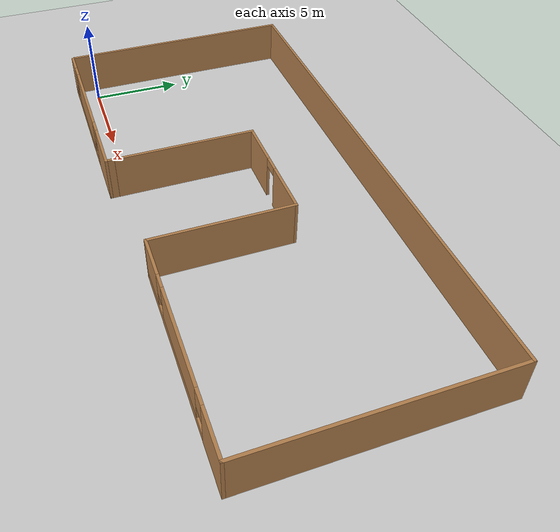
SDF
<sdf version="1.7">
 <world name="default">
  <light name="sun" type="directional">
   <pose>0 0 10 0 -0 0</pose>
   <diffuse>0.8 0.8 0.8 1</diffuse>
   <specular>0.2 0.2 0.2 1</specular>
   <attenuation>
    <range>1000</range>
    <constant>0.9</constant>
    <linear>0.01</linear>
    <quadratic>0.001</quadratic>
   </attenuation>
   <direction>-0.5 0.1 -0.9</direction>
   <spot><inner_angle>0</inner_angle><outer_angle>0</outer_angle><falloff>0</falloff></spot>
  </light>
  <model name="ground_plane">
   <static>1</static>
   <link name="link">
    <collision name="collision">
     <geometry><plane><normal>0 0 1</normal><size>100 100</size></plane></geometry>
     <surface>
      <contact><collide_bitmask>65535</collide_bitmask></contact>
      <friction><ode><mu>100</mu><mu2>50</mu2></ode></friction>
     </surface>
    </collision>
    <visual name="visual">
     <cast_shadows>0</cast_shadows>
     <geometry><plane><normal>0 0 1</normal><size>100 100</size></plane></geometry>
     <material>
      <script><uri>file://media/materials/scripts/gazebo.material</uri><name>Gazebo/Grey</name></script>
     </material>
    </visual>
   </link>
  </model>
  <model name="room">
   <pose>13.2097 5.53087 0 0 -0 0</pose>
   <link name="Wall_30">
    <collision name="Wall_30_Collision">
     <geometry><box><size>13.25 0.15 2.5</size></box></geometry>
     <pose>0 0 1.25 0 -0 0</pose>
    </collision>
    <visual name="Wall_30_Visual">
     <pose>0 0 1.25 0 -0 0</pose>
     <geometry><box><size>13.25 0.15 2.5</size></box></geometry>
     <material>
      <script><uri>file://media/materials/scripts/gazebo.material</uri><name>Gazebo/Wood</name></script>
      <ambient>1 1 1 1</ambient>
     </material>
     <meta><layer>0</layer></meta>
    </visual>
    <pose>-14.3 0.049999 0 0 -0 1.5708</pose>
   </link>
   <link name="Wall_31">
    <collision name="Wall_31_Collision">
     <geometry><box><size>28.75 0.15 2.5</size></box></geometry>
     <pose>0 0 1.25 0 -0 0</pose>
    </collision>
    <visual name="Wall_31_Visual">
     <pose>0 0 1.25 0 -0 0</pose>
     <geometry><box><size>28.75 0.15 2.5</size></box></geometry>
     <material>
      <script><uri>file://media/materials/scripts/gazebo.material</uri><name>Gazebo/Wood</name></script>
      <ambient>1 1 1 1</ambient>
     </material>
     <meta><layer>0</layer></meta>
    </visual>
    <pose>-0 6.6 0 0 -0 0</pose>
   </link>
   <link name="Wall_34">
    <collision name="Wall_34_Collision">
     <geometry><box><size>12.75 0.15 2.5</size></box></geometry>
     <pose>0 0 1.25 0 -0 0</pose>
    </collision>
    <visual name="Wall_34_Visual">
     <pose>0 0 1.25 0 -0 0</pose>
     <geometry><box><size>12.75 0.15 2.5</size></box></geometry>
     <material>
      <script><uri>file://media/materials/scripts/gazebo.material</uri><name>Gazebo/Wood</name></script>
      <ambient>1 1 1 1</ambient>
     </material>
     <meta><layer>0</layer></meta>
    </visual>
    <pose>14.3 0.299999 0 0 -0 -1.5708</pose>
   </link>
   <link name="Wall_37">
    <pose>8.625 -6 0 0 -0 3.14159</pose>
    <visual name="Wall_37_Visual_0">
     <pose>-4.55074 0 1.25 0 -0 0</pose>
     <geometry><box><size>2.39852 0.15 2.5</size></box></geometry>
     <material>
      <script><uri>file://media/materials/scripts/gazebo.material</uri><name>Gazebo/Wood</name></script>
      <ambient>1 1 1 1</ambient>
     </material>
     <meta><layer>0</layer></meta>
    </visual>
    <collision name="Wall_37_Collision_0">
     <geometry><box><size>2.39852 0.15 2.5</size></box></geometry>
     <pose>-4.55074 0 1.25 0 -0 0</pose>
    </collision>
    <visual name="Wall_37_Visual_1">
     <pose>1.19926 0 0.25 0 -0 0</pose>
     <geometry><box><size>9.10148 0.15 0.5</size></box></geometry>
     <material>
      <script><uri>file://media/materials/scripts/gazebo.material</uri><name>Gazebo/Wood</name></script>
      <ambient>1 1 1 1</ambient>
     </material>
     <meta><layer>0</layer></meta>
    </visual>
    <collision name="Wall_37_Collision_1">
     <geometry><box><size>9.10148 0.15 0.5</size></box></geometry>
     <pose>1.19926 0 0.25 0 -0 0</pose>
    </collision>
    <visual name="Wall_37_Visual_2">
     <pose>0.05985 0 1.5 0 -0 0</pose>
     <geometry><box><size>5.22267 0.15 2</size></box></geometry>
     <material>
      <script><uri>file://media/materials/scripts/gazebo.material</uri><name>Gazebo/Wood</name></script>
      <ambient>1 1 1 1</ambient>
     </material>
     <meta><layer>0</layer></meta>
    </visual>
    <collision name="Wall_37_Collision_2">
     <geometry><box><size>5.22267 0.15 2</size></box></geometry>
     <pose>0.05985 0 1.5 0 -0 0</pose>
    </collision>
    <visual name="Wall_37_Visual_3">
     <pose>4.61059 0 1.5 0 -0 0</pose>
     <geometry><box><size>2.27882 0.15 2</size></box></geometry>
     <material>
      <script><uri>file://media/materials/scripts/gazebo.material</uri><name>Gazebo/Wood</name></script>
      <ambient>1 1 1 1</ambient>
     </material>
     <meta><layer>0</layer></meta>
    </visual>
    <collision name="Wall_37_Collision_3">
     <geometry><box><size>2.27882 0.15 2</size></box></geometry>
     <pose>4.61059 0 1.5 0 -0 0</pose>
    </collision>
    <visual name="Wall_37_Visual_4">
     <pose>-2.95148 0 1.9 0 -0 0</pose>
     <geometry><box><size>0.8 0.15 1.2</size></box></geometry>
     <material>
      <script><uri>file://media/materials/scripts/gazebo.material</uri><name>Gazebo/Wood</name></script>
      <ambient>1 1 1 1</ambient>
     </material>
     <meta><layer>0</layer></meta>
    </visual>
    <collision name="Wall_37_Collision_4">
     <geometry><box><size>0.8 0.15 1.2</size></box></geometry>
     <pose>-2.95148 0 1.9 0 -0 0</pose>
    </collision>
    <visual name="Wall_37_Visual_5">
     <pose>3.07118 0 1.9 0 -0 0</pose>
     <geometry><box><size>0.8 0.15 1.2</size></box></geometry>
     <material>
      <script><uri>file://media/materials/scripts/gazebo.material</uri><name>Gazebo/Wood</name></script>
      <ambient>1 1 1 1</ambient>
     </material>
     <meta><layer>0</layer></meta>
    </visual>
    <collision name="Wall_37_Collision_5">
     <geometry><box><size>0.8 0.15 1.2</size></box></geometry>
     <pose>3.07118 0 1.9 0 -0 0</pose>
    </collision>
   </link>
   <link name="Wall_38">
    <collision name="Wall_38_Collision">
     <geometry><box><size>7.5 0.15 2.5</size></box></geometry>
     <pose>0 0 1.25 0 -0 0</pose>
    </collision>
    <visual name="Wall_38_Visual">
     <pose>0 0 1.25 0 -0 0</pose>
     <geometry><box><size>7.5 0.15 2.5</size></box></geometry>
     <material>
      <script><uri>file://media/materials/scripts/gazebo.material</uri><name>Gazebo/Wood</name></script>
      <ambient>1 1 1 1</ambient>
     </material>
     <meta><layer>0</layer></meta>
    </visual>
    <pose>2.95 -2.325 0 0 -0 1.5708</pose>
   </link>
   <link name="Wall_39">
    <pose>-0.225 1.35 0 0 -0 3.14159</pose>
    <visual name="Wall_39_Visual_0">
     <pose>-1.75696 0 1.25 0 -0 0</pose>
     <geometry><box><size>2.98608 0.15 2.5</size></box></geometry>
     <material>
      <script><uri>file://media/materials/scripts/gazebo.material</uri><name>Gazebo/Wood</name></script>
      <ambient>1 1 1 1</ambient>
     </material>
     <meta><layer>0</layer></meta>
    </visual>
    <collision name="Wall_39_Collision_0">
     <geometry><box><size>2.98608 0.15 2.5</size></box></geometry>
     <pose>-1.75696 0 1.25 0 -0 0</pose>
    </collision>
    <visual name="Wall_39_Visual_1">
     <pose>1.94304 0 1.25 0 -0 0</pose>
     <geometry><box><size>2.61392 0.15 2.5</size></box></geometry>
     <material>
      <script><uri>file://media/materials/scripts/gazebo.material</uri><name>Gazebo/Wood</name></script>
      <ambient>1 1 1 1</ambient>
     </material>
     <meta><layer>0</layer></meta>
    </visual>
    <collision name="Wall_39_Collision_1">
     <geometry><box><size>2.61392 0.15 2.5</size></box></geometry>
     <pose>1.94304 0 1.25 0 -0 0</pose>
    </collision>
    <visual name="Wall_39_Visual_2">
     <pose>0.186082 0 2.25 0 -0 0</pose>
     <geometry><box><size>0.9 0.15 0.5</size></box></geometry>
     <material>
      <script><uri>file://media/materials/scripts/gazebo.material</uri><name>Gazebo/Wood</name></script>
      <ambient>1 1 1 1</ambient>
     </material>
     <meta><layer>0</layer></meta>
    </visual>
    <collision name="Wall_39_Collision_2">
     <geometry><box><size>0.9 0.15 0.5</size></box></geometry>
     <pose>0.186082 0 2.25 0 -0 0</pose>
    </collision>
   </link>
   <link name="Wall_40">
    <collision name="Wall_40_Collision">
     <geometry><box><size>7.75 0.15 2.5</size></box></geometry>
     <pose>0 0 1.25 0 -0 0</pose>
    </collision>
    <visual name="Wall_40_Visual">
     <pose>0 0 1.25 0 -0 0</pose>
     <geometry><box><size>7.75 0.15 2.5</size></box></geometry>
     <material>
      <script><uri>file://media/materials/scripts/gazebo.material</uri><name>Gazebo/Wood</name></script>
      <ambient>1 1 1 1</ambient>
     </material>
     <meta><layer>0</layer></meta>
    </visual>
    <pose>-3.4 -2.45 0 0 -0 -1.5708</pose>
   </link>
   <link name="Wall_41">
    <collision name="Wall_41_Collision">
     <geometry><box><size>0.5 0.15 2.5</size></box></geometry>
     <pose>0 0 1.25 0 -0 0</pose>
    </collision>
    <visual name="Wall_41_Visual">
     <pose>0 0 1.25 0 -0 0</pose>
     <geometry><box><size>0.5 0.15 2.5</size></box></geometry>
     <material>
      <script><uri>file://media/materials/scripts/gazebo.material</uri><name>Gazebo/Wood</name></script>
      <ambient>1 1 1 1</ambient>
     </material>
     <meta><layer>0</layer></meta>
    </visual>
    <pose>-3.4 -6.425 0 0 -0 -1.5708</pose>
   </link>
   <link name="Wall_42">
    <pose>-8.825 -6.6 0 0 -0 3.14159</pose>
    <visual name="Wall_42_Visual_0">
     <pose>-4.0407 0 1.25 0 -0 0</pose>
     <geometry><box><size>2.9186 0.15 2.5</size></box></geometry>
     <material>
      <script><uri>file://media/materials/scripts/gazebo.material</uri><name>Gazebo/Wood</name></script>
      <ambient>1 1 1 1</ambient>
     </material>
     <meta><layer>0</layer></meta>
    </visual>
    <collision name="Wall_42_Collision_0">
     <geometry><box><size>2.9186 0.15 2.5</size></box></geometry>
     <pose>-4.0407 0 1.25 0 -0 0</pose>
    </collision>
    <visual name="Wall_42_Visual_1">
     <pose>1.4593 0 0.25 0 -0 0</pose>
     <geometry><box><size>8.0814 0.15 0.5</size></box></geometry>
     <material>
      <script><uri>file://media/materials/scripts/gazebo.material</uri><name>Gazebo/Wood</name></script>
      <ambient>1 1 1 1</ambient>
     </material>
     <meta><layer>0</layer></meta>
    </visual>
    <collision name="Wall_42_Collision_1">
     <geometry><box><size>8.0814 0.15 0.5</size></box></geometry>
     <pose>1.4593 0 0.25 0 -0 0</pose>
    </collision>
    <visual name="Wall_42_Visual_2">
     <pose>0.829932 0 1.5 0 -0 0</pose>
     <geometry><box><size>5.22267 0.15 2</size></box></geometry>
     <material>
      <script><uri>file://media/materials/scripts/gazebo.material</uri><name>Gazebo/Wood</name></script>
      <ambient>1 1 1 1</ambient>
     </material>
     <meta><layer>0</layer></meta>
    </visual>
    <collision name="Wall_42_Collision_2">
     <geometry><box><size>5.22267 0.15 2</size></box></geometry>
     <pose>0.829932 0 1.5 0 -0 0</pose>
    </collision>
    <visual name="Wall_42_Visual_3">
     <pose>4.87063 0 1.5 0 -0 0</pose>
     <geometry><box><size>1.25874 0.15 2</size></box></geometry>
     <material>
      <script><uri>file://media/materials/scripts/gazebo.material</uri><name>Gazebo/Wood</name></script>
      <ambient>1 1 1 1</ambient>
     </material>
     <meta><layer>0</layer></meta>
    </visual>
    <collision name="Wall_42_Collision_3">
     <geometry><box><size>1.25874 0.15 2</size></box></geometry>
     <pose>4.87063 0 1.5 0 -0 0</pose>
    </collision>
    <visual name="Wall_42_Visual_4">
     <pose>-2.1814 0 1.9 0 -0 0</pose>
     <geometry><box><size>0.8 0.15 1.2</size></box></geometry>
     <material>
      <script><uri>file://media/materials/scripts/gazebo.material</uri><name>Gazebo/Wood</name></script>
      <ambient>1 1 1 1</ambient>
     </material>
     <meta><layer>0</layer></meta>
    </visual>
    <collision name="Wall_42_Collision_4">
     <geometry><box><size>0.8 0.15 1.2</size></box></geometry>
     <pose>-2.1814 0 1.9 0 -0 0</pose>
    </collision>
    <visual name="Wall_42_Visual_5">
     <pose>3.84126 0 1.9 0 -0 0</pose>
     <geometry><box><size>0.8 0.15 1.2</size></box></geometry>
     <material>
      <script><uri>file://media/materials/scripts/gazebo.material</uri><name>Gazebo/Wood</name></script>
      <ambient>1 1 1 1</ambient>
     </material>
     <meta><layer>0</layer></meta>
    </visual>
    <collision name="Wall_42_Collision_5">
     <geometry><box><size>0.8 0.15 1.2</size></box></geometry>
     <pose>3.84126 0 1.9 0 -0 0</pose>
    </collision>
   </link>
   <static>1</static>
  </model>
  <gravity>0 0 -9.8</gravity>
  <magnetic_field>6e-06 2.3e-05 -4.2e-05</magnetic_field>
  <atmosphere type="adiabatic"/>
  <physics type="ode">
   <max_step_size>0.001</max_step_size>
   <real_time_factor>1</real_time_factor>
   <real_time_update_rate>1000</real_time_update_rate>
  </physics>
  <scene><ambient>0.4 0.4 0.4 1</ambient><background>0.7 0.7 0.7 1</background><shadows>1</shadows></scene>
  <spherical_coordinates>
   <surface_model>EARTH_WGS84</surface_model>
   <latitude_deg>0</latitude_deg>
   <longitude_deg>0</longitude_deg>
   <elevation>0</elevation>
   <heading_deg>0</heading_deg>
  </spherical_coordinates>
 </world>
</sdf>
